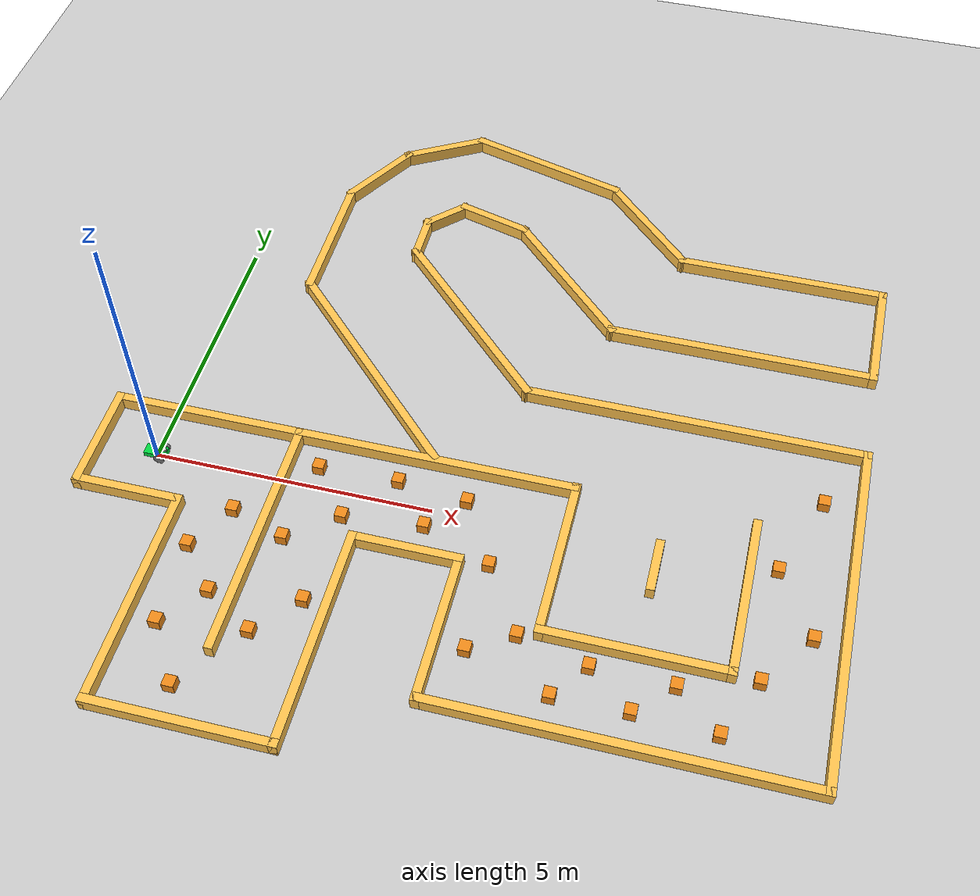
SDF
<?xml version="1.0" ?>
<sdf version="1.5">
  <world name="default">
    <!-- A global light source -->
    <include>
      <uri>model://sun</uri>
    </include>
    <!-- A ground plane -->
    <include>
      <uri>model://ground_plane</uri>
    </include>
    <!-- A ground plane -->
    <include>
      <uri>model://maze</uri>
    </include>
    <include>
      <uri>model://simple_diff</uri>
    </include>
    <model name='unit_box_clone'>
      <pose frame=''>1.72976 -0.812197 0.100735 4e-06 -3e-06 0</pose>
      <link name='link'>
        <inertial>
          <mass>1</mass>
          <inertia>
            <ixx>0.166667</ixx>
            <ixy>0</ixy>
            <ixz>0</ixz>
            <iyy>0.166667</iyy>
            <iyz>0</iyz>
            <izz>0.166667</izz>
          </inertia>
        </inertial>
        <collision name='collision'>
          <geometry>
            <box>
              <size>0.201469 0.201469 0.201469</size>
            </box>
          </geometry>
          <max_contacts>10</max_contacts>
          <surface>
            <contact>
              <ode/>
            </contact>
            <bounce/>
            <friction>
              <torsional>
                <ode/>
              </torsional>
              <ode/>
            </friction>
          </surface>
        </collision>
        <visual name='visual'>
          <geometry>
            <box>
              <size>0.201469 0.201469 0.201469</size>
            </box>
          </geometry>
          <material>
            <script>
              <name>Gazebo/Orange</name>
              <uri>file://media/materials/scripts/gazebo.material</uri>
            </script>
          </material>
        </visual>
        <self_collide>0</self_collide>
        <enable_wind>0</enable_wind>
        <kinematic>0</kinematic>
      </link>
    </model>
    <model name='unit_box_clone_0'>
      <pose frame=''>1.24328 -1.66091 0.100735 4e-06 -3e-06 0</pose>
      <link name='link'>
        <inertial>
          <mass>1</mass>
          <inertia>
            <ixx>0.166667</ixx>
            <ixy>0</ixy>
            <ixz>0</ixz>
            <iyy>0.166667</iyy>
            <iyz>0</iyz>
            <izz>0.166667</izz>
          </inertia>
        </inertial>
        <collision name='collision'>
          <geometry>
            <box>
              <size>0.201469 0.201469 0.201469</size>
            </box>
          </geometry>
          <max_contacts>10</max_contacts>
          <surface>
            <contact>
              <ode/>
            </contact>
            <bounce/>
            <friction>
              <torsional>
                <ode/>
              </torsional>
              <ode/>
            </friction>
          </surface>
        </collision>
        <visual name='visual'>
          <geometry>
            <box>
              <size>0.201469 0.201469 0.201469</size>
            </box>
          </geometry>
          <material>
            <script>
              <name>Gazebo/Orange</name>
              <uri>file://media/materials/scripts/gazebo.material</uri>
            </script>
          </material>
        </visual>
        <self_collide>0</self_collide>
        <enable_wind>0</enable_wind>
        <kinematic>0</kinematic>
      </link>
    </model>
    <model name='unit_box_clone_1'>
      <pose frame=''>1.90588 -2.41851 0.100735 4e-06 -3e-06 0</pose>
      <link name='link'>
        <inertial>
          <mass>1</mass>
          <inertia>
            <ixx>0.166667</ixx>
            <ixy>0</ixy>
            <ixz>0</ixz>
            <iyy>0.166667</iyy>
            <iyz>0</iyz>
            <izz>0.166667</izz>
          </inertia>
        </inertial>
        <collision name='collision'>
          <geometry>
            <box>
              <size>0.201469 0.201469 0.201469</size>
            </box>
          </geometry>
          <max_contacts>10</max_contacts>
          <surface>
            <contact>
              <ode/>
            </contact>
            <bounce/>
            <friction>
              <torsional>
                <ode/>
              </torsional>
              <ode/>
            </friction>
          </surface>
        </collision>
        <visual name='visual'>
          <geometry>
            <box>
              <size>0.201469 0.201469 0.201469</size>
            </box>
          </geometry>
          <material>
            <script>
              <name>Gazebo/Orange</name>
              <uri>file://media/materials/scripts/gazebo.material</uri>
            </script>
          </material>
        </visual>
        <self_collide>0</self_collide>
        <enable_wind>0</enable_wind>
        <kinematic>0</kinematic>
      </link>
    </model>
    <model name='unit_box_clone_2'>
      <pose frame=''>1.30367 -3.1595 0.100734 4e-06 -3e-06 0</pose>
      <link name='link'>
        <inertial>
          <mass>1</mass>
          <inertia>
            <ixx>0.166667</ixx>
            <ixy>0</ixy>
            <ixz>0</ixz>
            <iyy>0.166667</iyy>
            <iyz>0</iyz>
            <izz>0.166667</izz>
          </inertia>
        </inertial>
        <collision name='collision'>
          <geometry>
            <box>
              <size>0.201469 0.201469 0.201469</size>
            </box>
          </geometry>
          <max_contacts>10</max_contacts>
          <surface>
            <contact>
              <ode/>
            </contact>
            <bounce/>
            <friction>
              <torsional>
                <ode/>
              </torsional>
              <ode/>
            </friction>
          </surface>
        </collision>
        <visual name='visual'>
          <geometry>
            <box>
              <size>0.201469 0.201469 0.201469</size>
            </box>
          </geometry>
          <material>
            <script>
              <name>Gazebo/Orange</name>
              <uri>file://media/materials/scripts/gazebo.material</uri>
            </script>
          </material>
        </visual>
        <self_collide>0</self_collide>
        <enable_wind>0</enable_wind>
        <kinematic>0</kinematic>
      </link>
    </model>
    <model name='unit_box_clone_3'>
      <pose frame=''>1.95368 -4.16063 0.100734 4e-06 -3e-06 0</pose>
      <link name='link'>
        <inertial>
          <mass>1</mass>
          <inertia>
            <ixx>0.166667</ixx>
            <ixy>0</ixy>
            <ixz>0</ixz>
            <iyy>0.166667</iyy>
            <iyz>0</iyz>
            <izz>0.166667</izz>
          </inertia>
        </inertial>
        <collision name='collision'>
          <geometry>
            <box>
              <size>0.201469 0.201469 0.201469</size>
            </box>
          </geometry>
          <max_contacts>10</max_contacts>
          <surface>
            <contact>
              <ode/>
            </contact>
            <bounce/>
            <friction>
              <torsional>
                <ode/>
              </torsional>
              <ode/>
            </friction>
          </surface>
        </collision>
        <visual name='visual'>
          <geometry>
            <box>
              <size>0.201469 0.201469 0.201469</size>
            </box>
          </geometry>
          <material>
            <script>
              <name>Gazebo/Orange</name>
              <uri>file://media/materials/scripts/gazebo.material</uri>
            </script>
          </material>
        </visual>
        <self_collide>0</self_collide>
        <enable_wind>0</enable_wind>
        <kinematic>0</kinematic>
      </link>
    </model>
    <model name='unit_box_clone_4'>
      <pose frame=''>2.8029 -2.96481 0.100734 4e-06 -3e-06 0</pose>
      <link name='link'>
        <inertial>
          <mass>1</mass>
          <inertia>
            <ixx>0.166667</ixx>
            <ixy>0</ixy>
            <ixz>0</ixz>
            <iyy>0.166667</iyy>
            <iyz>0</iyz>
            <izz>0.166667</izz>
          </inertia>
        </inertial>
        <collision name='collision'>
          <geometry>
            <box>
              <size>0.201469 0.201469 0.201469</size>
            </box>
          </geometry>
          <max_contacts>10</max_contacts>
          <surface>
            <contact>
              <ode/>
            </contact>
            <bounce/>
            <friction>
              <torsional>
                <ode/>
              </torsional>
              <ode/>
            </friction>
          </surface>
        </collision>
        <visual name='visual'>
          <geometry>
            <box>
              <size>0.201469 0.201469 0.201469</size>
            </box>
          </geometry>
          <material>
            <script>
              <name>Gazebo/Orange</name>
              <uri>file://media/materials/scripts/gazebo.material</uri>
            </script>
          </material>
        </visual>
        <self_collide>0</self_collide>
        <enable_wind>0</enable_wind>
        <kinematic>0</kinematic>
      </link>
    </model>
    <model name='unit_box_clone_5'>
      <pose frame=''>3.46356 -2.2145 0.100734 4e-06 -3e-06 0</pose>
      <link name='link'>
        <inertial>
          <mass>1</mass>
          <inertia>
            <ixx>0.166667</ixx>
            <ixy>0</ixy>
            <ixz>0</ixz>
            <iyy>0.166667</iyy>
            <iyz>0</iyz>
            <izz>0.166667</izz>
          </inertia>
        </inertial>
        <collision name='collision'>
          <geometry>
            <box>
              <size>0.201469 0.201469 0.201469</size>
            </box>
          </geometry>
          <max_contacts>10</max_contacts>
          <surface>
            <contact>
              <ode/>
            </contact>
            <bounce/>
            <friction>
              <torsional>
                <ode/>
              </torsional>
              <ode/>
            </friction>
          </surface>
        </collision>
        <visual name='visual'>
          <geometry>
            <box>
              <size>0.201469 0.201469 0.201469</size>
            </box>
          </geometry>
          <material>
            <script>
              <name>Gazebo/Orange</name>
              <uri>file://media/materials/scripts/gazebo.material</uri>
            </script>
          </material>
        </visual>
        <self_collide>0</self_collide>
        <enable_wind>0</enable_wind>
        <kinematic>0</kinematic>
      </link>
    </model>
    <model name='unit_box_clone_6'>
      <pose frame=''>2.72766 -1.14347 0.100734 4e-06 -3e-06 0</pose>
      <link name='link'>
        <inertial>
          <mass>1</mass>
          <inertia>
            <ixx>0.166667</ixx>
            <ixy>0</ixy>
            <ixz>0</ixz>
            <iyy>0.166667</iyy>
            <iyz>0</iyz>
            <izz>0.166667</izz>
          </inertia>
        </inertial>
        <collision name='collision'>
          <geometry>
            <box>
              <size>0.201469 0.201469 0.201469</size>
            </box>
          </geometry>
          <max_contacts>10</max_contacts>
          <surface>
            <contact>
              <ode/>
            </contact>
            <bounce/>
            <friction>
              <torsional>
                <ode/>
              </torsional>
              <ode/>
            </friction>
          </surface>
        </collision>
        <visual name='visual'>
          <geometry>
            <box>
              <size>0.201469 0.201469 0.201469</size>
            </box>
          </geometry>
          <material>
            <script>
              <name>Gazebo/Orange</name>
              <uri>file://media/materials/scripts/gazebo.material</uri>
            </script>
          </material>
        </visual>
        <self_collide>0</self_collide>
        <enable_wind>0</enable_wind>
        <kinematic>0</kinematic>
      </link>
    </model>
    <model name='unit_box_clone_7'>
      <pose frame=''>3.55881 -0.496748 0.100734 4e-06 -3e-06 0</pose>
      <link name='link'>
        <inertial>
          <mass>1</mass>
          <inertia>
            <ixx>0.166667</ixx>
            <ixy>0</ixy>
            <ixz>0</ixz>
            <iyy>0.166667</iyy>
            <iyz>0</iyz>
            <izz>0.166667</izz>
          </inertia>
        </inertial>
        <collision name='collision'>
          <geometry>
            <box>
              <size>0.201469 0.201469 0.201469</size>
            </box>
          </geometry>
          <max_contacts>10</max_contacts>
          <surface>
            <contact>
              <ode/>
            </contact>
            <bounce/>
            <friction>
              <torsional>
                <ode/>
              </torsional>
              <ode/>
            </friction>
          </surface>
        </collision>
        <visual name='visual'>
          <geometry>
            <box>
              <size>0.201469 0.201469 0.201469</size>
            </box>
          </geometry>
          <material>
            <script>
              <name>Gazebo/Orange</name>
              <uri>file://media/materials/scripts/gazebo.material</uri>
            </script>
          </material>
        </visual>
        <self_collide>0</self_collide>
        <enable_wind>0</enable_wind>
        <kinematic>0</kinematic>
      </link>
    </model>
    <model name='unit_box_clone_8'>
      <pose frame=''>2.8727 0.379101 0.100734 4e-06 -3e-06 0</pose>
      <link name='link'>
        <inertial>
          <mass>1</mass>
          <inertia>
            <ixx>0.166667</ixx>
            <ixy>0</ixy>
            <ixz>0</ixz>
            <iyy>0.166667</iyy>
            <iyz>0</iyz>
            <izz>0.166667</izz>
          </inertia>
        </inertial>
        <collision name='collision'>
          <geometry>
            <box>
              <size>0.201469 0.201469 0.201469</size>
            </box>
          </geometry>
          <max_contacts>10</max_contacts>
          <surface>
            <contact>
              <ode/>
            </contact>
            <bounce/>
            <friction>
              <torsional>
                <ode/>
              </torsional>
              <ode/>
            </friction>
          </surface>
        </collision>
        <visual name='visual'>
          <geometry>
            <box>
              <size>0.201469 0.201469 0.201469</size>
            </box>
          </geometry>
          <material>
            <script>
              <name>Gazebo/Orange</name>
              <uri>file://media/materials/scripts/gazebo.material</uri>
            </script>
          </material>
        </visual>
        <self_collide>0</self_collide>
        <enable_wind>0</enable_wind>
        <kinematic>0</kinematic>
      </link>
    </model>
    <model name='unit_box_clone_9'>
      <pose frame=''>4.2939 0.422765 0.100734 4e-06 -3e-06 0</pose>
      <link name='link'>
        <inertial>
          <mass>1</mass>
          <inertia>
            <ixx>0.166667</ixx>
            <ixy>0</ixy>
            <ixz>0</ixz>
            <iyy>0.166667</iyy>
            <iyz>0</iyz>
            <izz>0.166667</izz>
          </inertia>
        </inertial>
        <collision name='collision'>
          <geometry>
            <box>
              <size>0.201469 0.201469 0.201469</size>
            </box>
          </geometry>
          <max_contacts>10</max_contacts>
          <surface>
            <contact>
              <ode/>
            </contact>
            <bounce/>
            <friction>
              <torsional>
                <ode/>
              </torsional>
              <ode/>
            </friction>
          </surface>
        </collision>
        <visual name='visual'>
          <geometry>
            <box>
              <size>0.201469 0.201469 0.201469</size>
            </box>
          </geometry>
          <material>
            <script>
              <name>Gazebo/Orange</name>
              <uri>file://media/materials/scripts/gazebo.material</uri>
            </script>
          </material>
        </visual>
        <self_collide>0</self_collide>
        <enable_wind>0</enable_wind>
        <kinematic>0</kinematic>
      </link>
    </model>
    <model name='unit_box_clone_10'>
      <pose frame=''>4.9692 -0.356687 0.100734 4e-06 -3e-06 0</pose>
      <link name='link'>
        <inertial>
          <mass>1</mass>
          <inertia>
            <ixx>0.166667</ixx>
            <ixy>0</ixy>
            <ixz>0</ixz>
            <iyy>0.166667</iyy>
            <iyz>0</iyz>
            <izz>0.166667</izz>
          </inertia>
        </inertial>
        <collision name='collision'>
          <geometry>
            <box>
              <size>0.201469 0.201469 0.201469</size>
            </box>
          </geometry>
          <max_contacts>10</max_contacts>
          <surface>
            <contact>
              <ode/>
            </contact>
            <bounce/>
            <friction>
              <torsional>
                <ode/>
              </torsional>
              <ode/>
            </friction>
          </surface>
        </collision>
        <visual name='visual'>
          <geometry>
            <box>
              <size>0.201469 0.201469 0.201469</size>
            </box>
          </geometry>
          <material>
            <script>
              <name>Gazebo/Orange</name>
              <uri>file://media/materials/scripts/gazebo.material</uri>
            </script>
          </material>
        </visual>
        <self_collide>0</self_collide>
        <enable_wind>0</enable_wind>
        <kinematic>0</kinematic>
      </link>
    </model>
    <model name='unit_box_clone_11'>
      <pose frame=''>5.54943 0.300041 0.100734 4e-06 -3e-06 0</pose>
      <link name='link'>
        <inertial>
          <mass>1</mass>
          <inertia>
            <ixx>0.166667</ixx>
            <ixy>0</ixy>
            <ixz>0</ixz>
            <iyy>0.166667</iyy>
            <iyz>0</iyz>
            <izz>0.166667</izz>
          </inertia>
        </inertial>
        <collision name='collision'>
          <geometry>
            <box>
              <size>0.201469 0.201469 0.201469</size>
            </box>
          </geometry>
          <max_contacts>10</max_contacts>
          <surface>
            <contact>
              <ode/>
            </contact>
            <bounce/>
            <friction>
              <torsional>
                <ode/>
              </torsional>
              <ode/>
            </friction>
          </surface>
        </collision>
        <visual name='visual'>
          <geometry>
            <box>
              <size>0.201469 0.201469 0.201469</size>
            </box>
          </geometry>
          <material>
            <script>
              <name>Gazebo/Orange</name>
              <uri>file://media/materials/scripts/gazebo.material</uri>
            </script>
          </material>
        </visual>
        <self_collide>0</self_collide>
        <enable_wind>0</enable_wind>
        <kinematic>0</kinematic>
      </link>
    </model>
    <model name='unit_box_clone_12'>
      <pose frame=''>6.22487 -0.841816 0.100734 4e-06 -3e-06 0</pose>
      <link name='link'>
        <inertial>
          <mass>1</mass>
          <inertia>
            <ixx>0.166667</ixx>
            <ixy>0</ixy>
            <ixz>0</ixz>
            <iyy>0.166667</iyy>
            <iyz>0</iyz>
            <izz>0.166667</izz>
          </inertia>
        </inertial>
        <collision name='collision'>
          <geometry>
            <box>
              <size>0.201469 0.201469 0.201469</size>
            </box>
          </geometry>
          <max_contacts>10</max_contacts>
          <surface>
            <contact>
              <ode/>
            </contact>
            <bounce/>
            <friction>
              <torsional>
                <ode/>
              </torsional>
              <ode/>
            </friction>
          </surface>
        </collision>
        <visual name='visual'>
          <geometry>
            <box>
              <size>0.201469 0.201469 0.201469</size>
            </box>
          </geometry>
          <material>
            <script>
              <name>Gazebo/Orange</name>
              <uri>file://media/materials/scripts/gazebo.material</uri>
            </script>
          </material>
        </visual>
        <self_collide>0</self_collide>
        <enable_wind>0</enable_wind>
        <kinematic>0</kinematic>
      </link>
    </model>
    <model name='unit_box_clone_13'>
      <pose frame=''>6.97691 -2.01097 0.100734 4e-06 -3e-06 0</pose>
      <link name='link'>
        <inertial>
          <mass>1</mass>
          <inertia>
            <ixx>0.166667</ixx>
            <ixy>0</ixy>
            <ixz>0</ixz>
            <iyy>0.166667</iyy>
            <iyz>0</iyz>
            <izz>0.166667</izz>
          </inertia>
        </inertial>
        <collision name='collision'>
          <geometry>
            <box>
              <size>0.201469 0.201469 0.201469</size>
            </box>
          </geometry>
          <max_contacts>10</max_contacts>
          <surface>
            <contact>
              <ode/>
            </contact>
            <bounce/>
            <friction>
              <torsional>
                <ode/>
              </torsional>
              <ode/>
            </friction>
          </surface>
        </collision>
        <visual name='visual'>
          <geometry>
            <box>
              <size>0.201469 0.201469 0.201469</size>
            </box>
          </geometry>
          <material>
            <script>
              <name>Gazebo/Orange</name>
              <uri>file://media/materials/scripts/gazebo.material</uri>
            </script>
          </material>
        </visual>
        <self_collide>0</self_collide>
        <enable_wind>0</enable_wind>
        <kinematic>0</kinematic>
      </link>
    </model>
    <model name='unit_box_clone_14'>
      <pose frame=''>6.24107 -2.4559 0.100734 4e-06 -3e-06 0</pose>
      <link name='link'>
        <inertial>
          <mass>1</mass>
          <inertia>
            <ixx>0.166667</ixx>
            <ixy>0</ixy>
            <ixz>0</ixz>
            <iyy>0.166667</iyy>
            <iyz>0</iyz>
            <izz>0.166667</izz>
          </inertia>
        </inertial>
        <collision name='collision'>
          <geometry>
            <box>
              <size>0.201469 0.201469 0.201469</size>
            </box>
          </geometry>
          <max_contacts>10</max_contacts>
          <surface>
            <contact>
              <ode/>
            </contact>
            <bounce/>
            <friction>
              <torsional>
                <ode/>
              </torsional>
              <ode/>
            </friction>
          </surface>
        </collision>
        <visual name='visual'>
          <geometry>
            <box>
              <size>0.201469 0.201469 0.201469</size>
            </box>
          </geometry>
          <material>
            <script>
              <name>Gazebo/Orange</name>
              <uri>file://media/materials/scripts/gazebo.material</uri>
            </script>
          </material>
        </visual>
        <self_collide>0</self_collide>
        <enable_wind>0</enable_wind>
        <kinematic>0</kinematic>
      </link>
    </model>
    <model name='unit_box_clone_15'>
      <pose frame=''>7.71583 -2.9299 0.100734 4e-06 -3e-06 0</pose>
      <link name='link'>
        <inertial>
          <mass>1</mass>
          <inertia>
            <ixx>0.166667</ixx>
            <ixy>0</ixy>
            <ixz>0</ixz>
            <iyy>0.166667</iyy>
            <iyz>0</iyz>
            <izz>0.166667</izz>
          </inertia>
        </inertial>
        <collision name='collision'>
          <geometry>
            <box>
              <size>0.201469 0.201469 0.201469</size>
            </box>
          </geometry>
          <max_contacts>10</max_contacts>
          <surface>
            <contact>
              <ode/>
            </contact>
            <bounce/>
            <friction>
              <torsional>
                <ode/>
              </torsional>
              <ode/>
            </friction>
          </surface>
        </collision>
        <visual name='visual'>
          <geometry>
            <box>
              <size>0.201469 0.201469 0.201469</size>
            </box>
          </geometry>
          <material>
            <script>
              <name>Gazebo/Orange</name>
              <uri>file://media/materials/scripts/gazebo.material</uri>
            </script>
          </material>
        </visual>
        <self_collide>0</self_collide>
        <enable_wind>0</enable_wind>
        <kinematic>0</kinematic>
      </link>
    </model>
    <model name='unit_box_clone_16'>
      <pose frame=''>8.20631 -2.28708 0.100734 4e-06 -3e-06 0</pose>
      <link name='link'>
        <inertial>
          <mass>1</mass>
          <inertia>
            <ixx>0.166667</ixx>
            <ixy>0</ixy>
            <ixz>0</ixz>
            <iyy>0.166667</iyy>
            <iyz>0</iyz>
            <izz>0.166667</izz>
          </inertia>
        </inertial>
        <collision name='collision'>
          <geometry>
            <box>
              <size>0.201469 0.201469 0.201469</size>
            </box>
          </geometry>
          <max_contacts>10</max_contacts>
          <surface>
            <contact>
              <ode/>
            </contact>
            <bounce/>
            <friction>
              <torsional>
                <ode/>
              </torsional>
              <ode/>
            </friction>
          </surface>
        </collision>
        <visual name='visual'>
          <geometry>
            <box>
              <size>0.201469 0.201469 0.201469</size>
            </box>
          </geometry>
          <material>
            <script>
              <name>Gazebo/Orange</name>
              <uri>file://media/materials/scripts/gazebo.material</uri>
            </script>
          </material>
        </visual>
        <self_collide>0</self_collide>
        <enable_wind>0</enable_wind>
        <kinematic>0</kinematic>
      </link>
    </model>
    <model name='unit_box_clone_17'>
      <pose frame=''>8.98857 -2.90039 0.100734 4e-06 -3e-06 0</pose>
      <link name='link'>
        <inertial>
          <mass>1</mass>
          <inertia>
            <ixx>0.166667</ixx>
            <ixy>0</ixy>
            <ixz>0</ixz>
            <iyy>0.166667</iyy>
            <iyz>0</iyz>
            <izz>0.166667</izz>
          </inertia>
        </inertial>
        <collision name='collision'>
          <geometry>
            <box>
              <size>0.201469 0.201469 0.201469</size>
            </box>
          </geometry>
          <max_contacts>10</max_contacts>
          <surface>
            <contact>
              <ode/>
            </contact>
            <bounce/>
            <friction>
              <torsional>
                <ode/>
              </torsional>
              <ode/>
            </friction>
          </surface>
        </collision>
        <visual name='visual'>
          <geometry>
            <box>
              <size>0.201469 0.201469 0.201469</size>
            </box>
          </geometry>
          <material>
            <script>
              <name>Gazebo/Orange</name>
              <uri>file://media/materials/scripts/gazebo.material</uri>
            </script>
          </material>
        </visual>
        <self_collide>0</self_collide>
        <enable_wind>0</enable_wind>
        <kinematic>0</kinematic>
      </link>
    </model>
    <model name='unit_box_clone_18'>
      <pose frame=''>9.60124 -2.29588 0.100734 4e-06 -3e-06 0</pose>
      <link name='link'>
        <inertial>
          <mass>1</mass>
          <inertia>
            <ixx>0.166667</ixx>
            <ixy>0</ixy>
            <ixz>0</ixz>
            <iyy>0.166667</iyy>
            <iyz>0</iyz>
            <izz>0.166667</izz>
          </inertia>
        </inertial>
        <collision name='collision'>
          <geometry>
            <box>
              <size>0.201469 0.201469 0.201469</size>
            </box>
          </geometry>
          <max_contacts>10</max_contacts>
          <surface>
            <contact>
              <ode/>
            </contact>
            <bounce/>
            <friction>
              <torsional>
                <ode/>
              </torsional>
              <ode/>
            </friction>
          </surface>
        </collision>
        <visual name='visual'>
          <geometry>
            <box>
              <size>0.201469 0.201469 0.201469</size>
            </box>
          </geometry>
          <material>
            <script>
              <name>Gazebo/Orange</name>
              <uri>file://media/materials/scripts/gazebo.material</uri>
            </script>
          </material>
        </visual>
        <self_collide>0</self_collide>
        <enable_wind>0</enable_wind>
        <kinematic>0</kinematic>
      </link>
    </model>
    <model name='unit_box_clone_19'>
      <pose frame=''>10.3805 -2.94608 0.100734 4e-06 -3e-06 0</pose>
      <link name='link'>
        <inertial>
          <mass>1</mass>
          <inertia>
            <ixx>0.166667</ixx>
            <ixy>0</ixy>
            <ixz>0</ixz>
            <iyy>0.166667</iyy>
            <iyz>0</iyz>
            <izz>0.166667</izz>
          </inertia>
        </inertial>
        <collision name='collision'>
          <geometry>
            <box>
              <size>0.201469 0.201469 0.201469</size>
            </box>
          </geometry>
          <max_contacts>10</max_contacts>
          <surface>
            <contact>
              <ode/>
            </contact>
            <bounce/>
            <friction>
              <torsional>
                <ode/>
              </torsional>
              <ode/>
            </friction>
          </surface>
        </collision>
        <visual name='visual'>
          <geometry>
            <box>
              <size>0.201469 0.201469 0.201469</size>
            </box>
          </geometry>
          <material>
            <script>
              <name>Gazebo/Orange</name>
              <uri>file://media/materials/scripts/gazebo.material</uri>
            </script>
          </material>
        </visual>
        <self_collide>0</self_collide>
        <enable_wind>0</enable_wind>
        <kinematic>0</kinematic>
      </link>
    </model>
    <model name='unit_box_clone_20'>
      <pose frame=''>10.8575 -1.90122 0.100734 4e-06 -3e-06 0</pose>
      <link name='link'>
        <inertial>
          <mass>1</mass>
          <inertia>
            <ixx>0.166667</ixx>
            <ixy>0</ixy>
            <ixz>0</ixz>
            <iyy>0.166667</iyy>
            <iyz>0</iyz>
            <izz>0.166667</izz>
          </inertia>
        </inertial>
        <collision name='collision'>
          <geometry>
            <box>
              <size>0.201469 0.201469 0.201469</size>
            </box>
          </geometry>
          <max_contacts>10</max_contacts>
          <surface>
            <contact>
              <ode/>
            </contact>
            <bounce/>
            <friction>
              <torsional>
                <ode/>
              </torsional>
              <ode/>
            </friction>
          </surface>
        </collision>
        <visual name='visual'>
          <geometry>
            <box>
              <size>0.201469 0.201469 0.201469</size>
            </box>
          </geometry>
          <material>
            <script>
              <name>Gazebo/Orange</name>
              <uri>file://media/materials/scripts/gazebo.material</uri>
            </script>
          </material>
        </visual>
        <self_collide>0</self_collide>
        <enable_wind>0</enable_wind>
        <kinematic>0</kinematic>
      </link>
    </model>
    <model name='unit_box_clone_21'>
      <pose frame=''>11.5803 -0.944816 0.100734 4e-06 -3e-06 0</pose>
      <link name='link'>
        <inertial>
          <mass>1</mass>
          <inertia>
            <ixx>0.166667</ixx>
            <ixy>0</ixy>
            <ixz>0</ixz>
            <iyy>0.166667</iyy>
            <iyz>0</iyz>
            <izz>0.166667</izz>
          </inertia>
        </inertial>
        <collision name='collision'>
          <geometry>
            <box>
              <size>0.201469 0.201469 0.201469</size>
            </box>
          </geometry>
          <max_contacts>10</max_contacts>
          <surface>
            <contact>
              <ode/>
            </contact>
            <bounce/>
            <friction>
              <torsional>
                <ode/>
              </torsional>
              <ode/>
            </friction>
          </surface>
        </collision>
        <visual name='visual'>
          <geometry>
            <box>
              <size>0.201469 0.201469 0.201469</size>
            </box>
          </geometry>
          <material>
            <script>
              <name>Gazebo/Orange</name>
              <uri>file://media/materials/scripts/gazebo.material</uri>
            </script>
          </material>
        </visual>
        <self_collide>0</self_collide>
        <enable_wind>0</enable_wind>
        <kinematic>0</kinematic>
      </link>
    </model>
    <model name='unit_box_clone_22'>
      <pose frame=''>10.8775 0.204691 0.100735 4e-06 -3e-06 0</pose>
      <link name='link'>
        <inertial>
          <mass>1</mass>
          <inertia>
            <ixx>0.166667</ixx>
            <ixy>0</ixy>
            <ixz>0</ixz>
            <iyy>0.166667</iyy>
            <iyz>0</iyz>
            <izz>0.166667</izz>
          </inertia>
        </inertial>
        <collision name='collision'>
          <geometry>
            <box>
              <size>0.201469 0.201469 0.201469</size>
            </box>
          </geometry>
          <max_contacts>10</max_contacts>
          <surface>
            <contact>
              <ode/>
            </contact>
            <bounce/>
            <friction>
              <torsional>
                <ode/>
              </torsional>
              <ode/>
            </friction>
          </surface>
        </collision>
        <visual name='visual'>
          <geometry>
            <box>
              <size>0.201469 0.201469 0.201469</size>
            </box>
          </geometry>
          <material>
            <script>
              <name>Gazebo/Orange</name>
              <uri>file://media/materials/scripts/gazebo.material</uri>
            </script>
          </material>
        </visual>
        <self_collide>0</self_collide>
        <enable_wind>0</enable_wind>
        <kinematic>0</kinematic>
      </link>
    </model>
    <model name='unit_box_clone_23'>
      <pose frame=''>11.464 1.72022 0.100735 4e-06 -3e-06 0</pose>
      <link name='link'>
        <inertial>
          <mass>1</mass>
          <inertia>
            <ixx>0.166667</ixx>
            <ixy>0</ixy>
            <ixz>0</ixz>
            <iyy>0.166667</iyy>
            <iyz>0</iyz>
            <izz>0.166667</izz>
          </inertia>
        </inertial>
        <collision name='collision'>
          <geometry>
            <box>
              <size>0.201469 0.201469 0.201469</size>
            </box>
          </geometry>
          <max_contacts>10</max_contacts>
          <surface>
            <contact>
              <ode/>
            </contact>
            <bounce/>
            <friction>
              <torsional>
                <ode/>
              </torsional>
              <ode/>
            </friction>
          </surface>
        </collision>
        <visual name='visual'>
          <geometry>
            <box>
              <size>0.201469 0.201469 0.201469</size>
            </box>
          </geometry>
          <material>
            <script>
              <name>Gazebo/Orange</name>
              <uri>file://media/materials/scripts/gazebo.material</uri>
            </script>
          </material>
        </visual>
        <self_collide>0</self_collide>
        <enable_wind>0</enable_wind>
        <kinematic>0</kinematic>
      </link>
    </model>
  </world>
</sdf>

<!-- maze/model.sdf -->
<sdf version='1.6'>
  <model name='maze'>
    <pose frame=''>5.512 2.22318 0 0 -0 0</pose>
    <link name='Wall_0'>
      <collision name='Wall_0_Collision'>
        <geometry>
          <box>
            <size>2 0.15 0.25</size>
          </box>
        </geometry>
        <pose frame=''>0 0 0.125 0 -0 0</pose>
      </collision>
      <visual name='Wall_0_Visual'>
        <pose frame=''>0 0 0.125 0 -0 0</pose>
        <geometry>
          <box>
            <size>2 0.15 0.25</size>
          </box>
        </geometry>
        <material>
          <script>
            <uri>file://media/materials/scripts/gazebo.material</uri>
            <name>Gazebo/Grey</name>
          </script>
          <ambient>1 0.764706 0.305882 1</ambient>
        </material>
        <meta>
          <layer>0</layer>
        </meta>
      </visual>
      <pose frame=''>-6.575 -2.22519 0 0 -0 1.5708</pose>
    </link>
    <link name='Wall_10'>
      <collision name='Wall_10_Collision'>
        <geometry>
          <box>
            <size>4 0.15 0.25</size>
          </box>
        </geometry>
        <pose frame=''>0 0 0.125 0 -0 0</pose>
      </collision>
      <visual name='Wall_10_Visual'>
        <pose frame=''>0 0 0.125 0 -0 0</pose>
        <geometry>
          <box>
            <size>4 0.15 0.25</size>
          </box>
        </geometry>
        <material>
          <script>
            <uri>file://media/materials/scripts/gazebo.material</uri>
            <name>Gazebo/Grey</name>
          </script>
          <ambient>1 0.764706 0.305882 1</ambient>
        </material>
        <meta>
          <layer>0</layer>
        </meta>
      </visual>
      <pose frame=''>-1.625 -5.07519 0 0 -0 1.5708</pose>
    </link>
    <link name='Wall_11'>
      <collision name='Wall_11_Collision'>
        <geometry>
          <box>
            <size>2 0.15 0.25</size>
          </box>
        </geometry>
        <pose frame=''>0 0 0.125 0 -0 0</pose>
      </collision>
      <visual name='Wall_11_Visual'>
        <pose frame=''>0 0 0.125 0 -0 0</pose>
        <geometry>
          <box>
            <size>2 0.15 0.25</size>
          </box>
        </geometry>
        <material>
          <script>
            <uri>file://media/materials/scripts/gazebo.material</uri>
            <name>Gazebo/Grey</name>
          </script>
          <ambient>1 0.764706 0.305882 1</ambient>
        </material>
        <meta>
          <layer>0</layer>
        </meta>
      </visual>
      <pose frame=''>-0.7 -3.15019 0 0 -0 0</pose>
    </link>
    <link name='Wall_12'>
      <collision name='Wall_12_Collision'>
        <geometry>
          <box>
            <size>2.75 0.15 0.25</size>
          </box>
        </geometry>
        <pose frame=''>0 0 0.125 0 -0 0</pose>
      </collision>
      <visual name='Wall_12_Visual'>
        <pose frame=''>0 0 0.125 0 -0 0</pose>
        <geometry>
          <box>
            <size>2.75 0.15 0.25</size>
          </box>
        </geometry>
        <material>
          <script>
            <uri>file://media/materials/scripts/gazebo.material</uri>
            <name>Gazebo/Grey</name>
          </script>
          <ambient>1 0.764706 0.305882 1</ambient>
        </material>
        <meta>
          <layer>0</layer>
        </meta>
      </visual>
      <pose frame=''>0.225 -4.45019 0 0 -0 -1.5708</pose>
    </link>
    <link name='Wall_13'>
      <collision name='Wall_13_Collision'>
        <geometry>
          <box>
            <size>6.5 0.15 0.25</size>
          </box>
        </geometry>
        <pose frame=''>0 0 0.125 0 -0 0</pose>
      </collision>
      <visual name='Wall_13_Visual'>
        <pose frame=''>0 0 0.125 0 -0 0</pose>
        <geometry>
          <box>
            <size>6.5 0.15 0.25</size>
          </box>
        </geometry>
        <material>
          <script>
            <uri>file://media/materials/scripts/gazebo.material</uri>
            <name>Gazebo/Grey</name>
          </script>
          <ambient>1 0.764706 0.305882 1</ambient>
        </material>
        <meta>
          <layer>0</layer>
        </meta>
      </visual>
      <pose frame=''>3.4 -5.75019 0 0 -0 0</pose>
    </link>
    <link name='Wall_15'>
      <collision name='Wall_15_Collision'>
        <geometry>
          <box>
            <size>4.5 0.15 0.25</size>
          </box>
        </geometry>
        <pose frame=''>0 0 0.125 0 -0 0</pose>
      </collision>
      <visual name='Wall_15_Visual'>
        <pose frame=''>0 0 0.125 0 -0 0</pose>
        <geometry>
          <box>
            <size>4.5 0.15 0.25</size>
          </box>
        </geometry>
        <material>
          <script>
            <uri>file://media/materials/scripts/gazebo.material</uri>
            <name>Gazebo/Grey</name>
          </script>
          <ambient>1 0.764706 0.305882 1</ambient>
        </material>
        <meta>
          <layer>0</layer>
        </meta>
      </visual>
      <pose frame=''>-3.174 -3.48618 0 0 -0 -1.5708</pose>
    </link>
    <link name='Wall_17'>
      <collision name='Wall_17_Collision'>
        <geometry>
          <box>
            <size>3 0.15 0.25</size>
          </box>
        </geometry>
        <pose frame=''>0 0 0.125 0 -0 0</pose>
      </collision>
      <visual name='Wall_17_Visual'>
        <pose frame=''>0 0 0.125 0 -0 0</pose>
        <geometry>
          <box>
            <size>3 0.15 0.25</size>
          </box>
        </geometry>
        <material>
          <script>
            <uri>file://media/materials/scripts/gazebo.material</uri>
            <name>Gazebo/Grey</name>
          </script>
          <ambient>1 0.764706 0.305882 1</ambient>
        </material>
        <meta>
          <layer>0</layer>
        </meta>
      </visual>
      <pose frame=''>1.801 -2.71019 0 0 -0 -1.5708</pose>
    </link>
    <link name='Wall_18'>
      <collision name='Wall_18_Collision'>
        <geometry>
          <box>
            <size>3.25 0.15 0.25</size>
          </box>
        </geometry>
        <pose frame=''>0 0 0.125 0 -0 0</pose>
      </collision>
      <visual name='Wall_18_Visual'>
        <pose frame=''>0 0 0.125 0 -0 0</pose>
        <geometry>
          <box>
            <size>3.25 0.15 0.25</size>
          </box>
        </geometry>
        <material>
          <script>
            <uri>file://media/materials/scripts/gazebo.material</uri>
            <name>Gazebo/Grey</name>
          </script>
          <ambient>1 0.764706 0.305882 1</ambient>
        </material>
        <meta>
          <layer>0</layer>
        </meta>
      </visual>
      <pose frame=''>3.351 -4.13518 0 0 -0 0</pose>
    </link>
    <link name='Wall_19'>
      <collision name='Wall_19_Collision'>
        <geometry>
          <box>
            <size>3 0.15 0.25</size>
          </box>
        </geometry>
        <pose frame=''>0 0 0.125 0 -0 0</pose>
      </collision>
      <visual name='Wall_19_Visual'>
        <pose frame=''>0 0 0.125 0 -0 0</pose>
        <geometry>
          <box>
            <size>3 0.15 0.25</size>
          </box>
        </geometry>
        <material>
          <script>
            <uri>file://media/materials/scripts/gazebo.material</uri>
            <name>Gazebo/Grey</name>
          </script>
          <ambient>1 0.764706 0.305882 1</ambient>
        </material>
        <meta>
          <layer>0</layer>
        </meta>
      </visual>
      <pose frame=''>4.901 -2.71019 0 0 -0 1.5708</pose>
    </link>
    <link name='Wall_21'>
      <collision name='Wall_21_Collision'>
        <geometry>
          <box>
            <size>6.5 0.15 0.25</size>
          </box>
        </geometry>
        <pose frame=''>0 0 0.125 0 -0 0</pose>
      </collision>
      <visual name='Wall_21_Visual'>
        <pose frame=''>0 0 0.125 0 -0 0</pose>
        <geometry>
          <box>
            <size>6.5 0.15 0.25</size>
          </box>
        </geometry>
        <material>
          <script>
            <uri>file://media/materials/scripts/gazebo.material</uri>
            <name>Gazebo/Grey</name>
          </script>
          <ambient>1 0.764706 0.305882 1</ambient>
        </material>
        <meta>
          <layer>0</layer>
        </meta>
      </visual>
      <pose frame=''>6.575 -2.57518 0 0 -0 1.5708</pose>
    </link>
    <link name='Wall_22'>
      <collision name='Wall_22_Collision'>
        <geometry>
          <box>
            <size>6.25 0.15 0.25</size>
          </box>
        </geometry>
        <pose frame=''>0 0 0.125 0 -0 0</pose>
      </collision>
      <visual name='Wall_22_Visual'>
        <pose frame=''>0 0 0.125 0 -0 0</pose>
        <geometry>
          <box>
            <size>6.25 0.15 0.25</size>
          </box>
        </geometry>
        <material>
          <script>
            <uri>file://media/materials/scripts/gazebo.material</uri>
            <name>Gazebo/Grey</name>
          </script>
          <ambient>1 0.764706 0.305882 1</ambient>
        </material>
        <meta>
          <layer>0</layer>
        </meta>
      </visual>
      <pose frame=''>3.525 0.599815 0 0 -0 3.14159</pose>
    </link>
    <link name='Wall_23'>
      <collision name='Wall_23_Collision'>
        <geometry>
          <box>
            <size>4.25 0.15 0.25</size>
          </box>
        </geometry>
        <pose frame=''>0 0 0.125 0 -0 0</pose>
      </collision>
      <visual name='Wall_23_Visual'>
        <pose frame=''>0 0 0.125 0 -0 0</pose>
        <geometry>
          <box>
            <size>4.25 0.15 0.25</size>
          </box>
        </geometry>
        <material>
          <script>
            <uri>file://media/materials/scripts/gazebo.material</uri>
            <name>Gazebo/Grey</name>
          </script>
          <ambient>1 0.764706 0.305882 1</ambient>
        </material>
        <meta>
          <layer>0</layer>
        </meta>
      </visual>
      <pose frame=''>-0.9745 2.04931 0 0 -0 2.35619</pose>
    </link>
    <link name='Wall_24'>
      <collision name='Wall_24_Collision'>
        <geometry>
          <box>
            <size>1 0.15 0.25</size>
          </box>
        </geometry>
        <pose frame=''>0 0 0.125 0 -0 0</pose>
      </collision>
      <visual name='Wall_24_Visual'>
        <pose frame=''>0 0 0.125 0 -0 0</pose>
        <geometry>
          <box>
            <size>1 0.15 0.25</size>
          </box>
        </geometry>
        <material>
          <script>
            <uri>file://media/materials/scripts/gazebo.material</uri>
            <name>Gazebo/Grey</name>
          </script>
          <ambient>1 0.764706 0.305882 1</ambient>
        </material>
        <meta>
          <layer>0</layer>
        </meta>
      </visual>
      <pose frame=''>-2.424 3.92381 0 0 -0 1.5708</pose>
    </link>
    <link name='Wall_25'>
      <collision name='Wall_25_Collision'>
        <geometry>
          <box>
            <size>1 0.15 0.25</size>
          </box>
        </geometry>
        <pose frame=''>0 0 0.125 0 -0 0</pose>
      </collision>
      <visual name='Wall_25_Visual'>
        <pose frame=''>0 0 0.125 0 -0 0</pose>
        <geometry>
          <box>
            <size>1 0.15 0.25</size>
          </box>
        </geometry>
        <material>
          <script>
            <uri>file://media/materials/scripts/gazebo.material</uri>
            <name>Gazebo/Grey</name>
          </script>
          <ambient>1 0.764706 0.305882 1</ambient>
        </material>
        <meta>
          <layer>0</layer>
        </meta>
      </visual>
      <pose frame=''>-2.1235 4.64931 0 0 -0 0.785398</pose>
    </link>
    <link name='Wall_26'>
      <collision name='Wall_26_Collision'>
        <geometry>
          <box>
            <size>1.5 0.15 0.25</size>
          </box>
        </geometry>
        <pose frame=''>0 0 0.125 0 -0 0</pose>
      </collision>
      <visual name='Wall_26_Visual'>
        <pose frame=''>0 0 0.125 0 -0 0</pose>
        <geometry>
          <box>
            <size>1.5 0.15 0.25</size>
          </box>
        </geometry>
        <material>
          <script>
            <uri>file://media/materials/scripts/gazebo.material</uri>
            <name>Gazebo/Grey</name>
          </script>
          <ambient>1 0.764706 0.305882 1</ambient>
        </material>
        <meta>
          <layer>0</layer>
        </meta>
      </visual>
      <pose frame=''>-1.171 4.77531 0 0 -0 -0.261509</pose>
    </link>
    <link name='Wall_27'>
      <collision name='Wall_27_Collision'>
        <geometry>
          <box>
            <size>3.25 0.15 0.25</size>
          </box>
        </geometry>
        <pose frame=''>0 0 0.125 0 -0 0</pose>
      </collision>
      <visual name='Wall_27_Visual'>
        <pose frame=''>0 0 0.125 0 -0 0</pose>
        <geometry>
          <box>
            <size>3.25 0.15 0.25</size>
          </box>
        </geometry>
        <material>
          <script>
            <uri>file://media/materials/scripts/gazebo.material</uri>
            <name>Gazebo/Grey</name>
          </script>
          <ambient>1 0.764706 0.305882 1</ambient>
        </material>
        <meta>
          <layer>0</layer>
        </meta>
      </visual>
      <pose frame=''>0.577 3.50481 0 0 -0 -0.785398</pose>
    </link>
    <link name='Wall_28'>
      <collision name='Wall_28_Collision'>
        <geometry>
          <box>
            <size>5 0.15 0.25</size>
          </box>
        </geometry>
        <pose frame=''>0 0 0.125 0 -0 0</pose>
      </collision>
      <visual name='Wall_28_Visual'>
        <pose frame=''>0 0 0.125 0 -0 0</pose>
        <geometry>
          <box>
            <size>5 0.15 0.25</size>
          </box>
        </geometry>
        <material>
          <script>
            <uri>file://media/materials/scripts/gazebo.material</uri>
            <name>Gazebo/Grey</name>
          </script>
          <ambient>1 0.764706 0.305882 1</ambient>
        </material>
        <meta>
          <layer>0</layer>
        </meta>
      </visual>
      <pose frame=''>4.098 2.40882 0 0 -0 0</pose>
    </link>
    <link name='Wall_29'>
      <collision name='Wall_29_Collision'>
        <geometry>
          <box>
            <size>2.25 0.15 0.25</size>
          </box>
        </geometry>
        <pose frame=''>0 0 0.125 0 -0 0</pose>
      </collision>
      <visual name='Wall_29_Visual'>
        <pose frame=''>0 0 0.125 0 -0 0</pose>
        <geometry>
          <box>
            <size>2.25 0.15 0.25</size>
          </box>
        </geometry>
        <material>
          <script>
            <uri>file://media/materials/scripts/gazebo.material</uri>
            <name>Gazebo/Grey</name>
          </script>
          <ambient>1 0.764706 0.305882 1</ambient>
        </material>
        <meta>
          <layer>0</layer>
        </meta>
      </visual>
      <pose frame=''>6.523 3.45881 0 0 -0 1.5708</pose>
    </link>
    <link name='Wall_30'>
      <collision name='Wall_30_Collision'>
        <geometry>
          <box>
            <size>4 0.15 0.25</size>
          </box>
        </geometry>
        <pose frame=''>0 0 0.125 0 -0 0</pose>
      </collision>
      <visual name='Wall_30_Visual'>
        <pose frame=''>0 0 0.125 0 -0 0</pose>
        <geometry>
          <box>
            <size>4 0.15 0.25</size>
          </box>
        </geometry>
        <material>
          <script>
            <uri>file://media/materials/scripts/gazebo.material</uri>
            <name>Gazebo/Grey</name>
          </script>
          <ambient>1 0.764706 0.305882 1</ambient>
        </material>
        <meta>
          <layer>0</layer>
        </meta>
      </visual>
      <pose frame=''>4.598 4.50882 0 0 -0 3.14159</pose>
    </link>
    <link name='Wall_31'>
      <collision name='Wall_31_Collision'>
        <geometry>
          <box>
            <size>2.5 0.15 0.25</size>
          </box>
        </geometry>
        <pose frame=''>0 0 0.125 0 -0 0</pose>
      </collision>
      <visual name='Wall_31_Visual'>
        <pose frame=''>0 0 0.125 0 -0 0</pose>
        <geometry>
          <box>
            <size>2.5 0.15 0.25</size>
          </box>
        </geometry>
        <material>
          <script>
            <uri>file://media/materials/scripts/gazebo.material</uri>
            <name>Gazebo/Grey</name>
          </script>
          <ambient>1 0.764706 0.305882 1</ambient>
        </material>
        <meta>
          <layer>0</layer>
        </meta>
      </visual>
      <pose frame=''>1.842 5.33932 0 0 -0 2.35649</pose>
    </link>
    <link name='Wall_32'>
      <collision name='Wall_32_Collision'>
        <geometry>
          <box>
            <size>3.25 0.15 0.25</size>
          </box>
        </geometry>
        <pose frame=''>0 0 0.125 0 -0 0</pose>
      </collision>
      <visual name='Wall_32_Visual'>
        <pose frame=''>0 0 0.125 0 -0 0</pose>
        <geometry>
          <box>
            <size>3.25 0.15 0.25</size>
          </box>
        </geometry>
        <material>
          <script>
            <uri>file://media/materials/scripts/gazebo.material</uri>
            <name>Gazebo/Grey</name>
          </script>
          <ambient>1 0.764706 0.305882 1</ambient>
        </material>
        <meta>
          <layer>0</layer>
        </meta>
      </visual>
      <pose frame=''>-0.486 6.57132 0 0 -0 2.87956</pose>
    </link>
    <link name='Wall_33'>
      <collision name='Wall_33_Collision'>
        <geometry>
          <box>
            <size>1.75 0.15 0.25</size>
          </box>
        </geometry>
        <pose frame=''>0 0 0.125 0 -0 0</pose>
      </collision>
      <visual name='Wall_33_Visual'>
        <pose frame=''>0 0 0.125 0 -0 0</pose>
        <geometry>
          <box>
            <size>1.75 0.15 0.25</size>
          </box>
        </geometry>
        <material>
          <script>
            <uri>file://media/materials/scripts/gazebo.material</uri>
            <name>Gazebo/Grey</name>
          </script>
          <ambient>1 0.764706 0.305882 1</ambient>
        </material>
        <meta>
          <layer>0</layer>
        </meta>
      </visual>
      <pose frame=''>-2.676 6.57281 0 0 -0 -2.61811</pose>
    </link>
    <link name='Wall_34'>
      <collision name='Wall_34_Collision'>
        <geometry>
          <box>
            <size>1.75 0.15 0.25</size>
          </box>
        </geometry>
        <pose frame=''>0 0 0.125 0 -0 0</pose>
      </collision>
      <visual name='Wall_34_Visual'>
        <pose frame=''>0 0 0.125 0 -0 0</pose>
        <geometry>
          <box>
            <size>1.75 0.15 0.25</size>
          </box>
        </geometry>
        <material>
          <script>
            <uri>file://media/materials/scripts/gazebo.material</uri>
            <name>Gazebo/Grey</name>
          </script>
          <ambient>1 0.764706 0.305882 1</ambient>
        </material>
        <meta>
          <layer>0</layer>
        </meta>
      </visual>
      <pose frame=''>-3.769 5.47982 0 0 -0 -2.09428</pose>
    </link>
    <link name='Wall_35'>
      <collision name='Wall_35_Collision'>
        <geometry>
          <box>
            <size>2.75 0.15 0.25</size>
          </box>
        </geometry>
        <pose frame=''>0 0 0.125 0 -0 0</pose>
      </collision>
      <visual name='Wall_35_Visual'>
        <pose frame=''>0 0 0.125 0 -0 0</pose>
        <geometry>
          <box>
            <size>2.75 0.15 0.25</size>
          </box>
        </geometry>
        <material>
          <script>
            <uri>file://media/materials/scripts/gazebo.material</uri>
            <name>Gazebo/Grey</name>
          </script>
          <ambient>1 0.764706 0.305882 1</ambient>
        </material>
        <meta>
          <layer>0</layer>
        </meta>
      </visual>
      <pose frame=''>-4.169 3.48681 0 0 -0 -1.5708</pose>
    </link>
    <link name='Wall_36'>
      <collision name='Wall_36_Collision'>
        <geometry>
          <box>
            <size>5 0.15 0.25</size>
          </box>
        </geometry>
        <pose frame=''>0 0 0.125 0 -0 0</pose>
      </collision>
      <visual name='Wall_36_Visual'>
        <pose frame=''>0 0 0.125 0 -0 0</pose>
        <geometry>
          <box>
            <size>5 0.15 0.25</size>
          </box>
        </geometry>
        <material>
          <script>
            <uri>file://media/materials/scripts/gazebo.material</uri>
            <name>Gazebo/Grey</name>
          </script>
          <ambient>1 0.764706 0.305882 1</ambient>
        </material>
        <meta>
          <layer>0</layer>
        </meta>
      </visual>
      <pose frame=''>-2.454 0.472315 0 0 -0 -0.785252</pose>
    </link>
    <link name='Wall_38'>
      <collision name='Wall_38_Collision'>
        <geometry>
          <box>
            <size>1 0.15 0.25</size>
          </box>
        </geometry>
        <pose frame=''>0 0 0.125 0 -0 0</pose>
      </collision>
      <visual name='Wall_38_Visual'>
        <pose frame=''>0 0 0.125 0 -0 0</pose>
        <geometry>
          <box>
            <size>1 0.15 0.25</size>
          </box>
        </geometry>
        <material>
          <script>
            <uri>file://media/materials/scripts/gazebo.material</uri>
            <name>Gazebo/Grey</name>
          </script>
          <ambient>1 0.764706 0.305882 1</ambient>
        </material>
        <meta>
          <layer>0</layer>
        </meta>
      </visual>
      <pose frame=''>3.38374 -2.50101 0 0 -0 1.5708</pose>
    </link>
    <link name='Wall_4'>
      <collision name='Wall_4_Collision'>
        <geometry>
          <box>
            <size>8.5 0.15 0.25</size>
          </box>
        </geometry>
        <pose frame=''>0 0 0.125 0 -0 0</pose>
      </collision>
      <visual name='Wall_4_Visual'>
        <pose frame=''>0 0 0.125 0 -0 0</pose>
        <geometry>
          <box>
            <size>8.5 0.15 0.25</size>
          </box>
        </geometry>
        <material>
          <script>
            <uri>file://media/materials/scripts/gazebo.material</uri>
            <name>Gazebo/Grey</name>
          </script>
          <ambient>1 0.764706 0.305882 1</ambient>
        </material>
        <meta>
          <layer>0</layer>
        </meta>
      </visual>
      <pose frame=''>-2.4 -1.30018 0 0 -0 0</pose>
    </link>
    <link name='Wall_7'>
      <collision name='Wall_7_Collision'>
        <geometry>
          <box>
            <size>2 0.15 0.25</size>
          </box>
        </geometry>
        <pose frame=''>0 0 0.125 0 -0 0</pose>
      </collision>
      <visual name='Wall_7_Visual'>
        <pose frame=''>0 0 0.125 0 -0 0</pose>
        <geometry>
          <box>
            <size>2 0.15 0.25</size>
          </box>
        </geometry>
        <material>
          <script>
            <uri>file://media/materials/scripts/gazebo.material</uri>
            <name>Gazebo/Grey</name>
          </script>
          <ambient>1 0.764706 0.305882 1</ambient>
        </material>
        <meta>
          <layer>0</layer>
        </meta>
      </visual>
      <pose frame=''>-5.65 -3.15019 0 0 -0 0</pose>
    </link>
    <link name='Wall_8'>
      <collision name='Wall_8_Collision'>
        <geometry>
          <box>
            <size>4 0.15 0.25</size>
          </box>
        </geometry>
        <pose frame=''>0 0 0.125 0 -0 0</pose>
      </collision>
      <visual name='Wall_8_Visual'>
        <pose frame=''>0 0 0.125 0 -0 0</pose>
        <geometry>
          <box>
            <size>4 0.15 0.25</size>
          </box>
        </geometry>
        <material>
          <script>
            <uri>file://media/materials/scripts/gazebo.material</uri>
            <name>Gazebo/Grey</name>
          </script>
          <ambient>1 0.764706 0.305882 1</ambient>
        </material>
        <meta>
          <layer>0</layer>
        </meta>
      </visual>
      <pose frame=''>-4.725 -5.07519 0 0 -0 -1.5708</pose>
    </link>
    <link name='Wall_9'>
      <collision name='Wall_9_Collision'>
        <geometry>
          <box>
            <size>3.25 0.15 0.25</size>
          </box>
        </geometry>
        <pose frame=''>0 0 0.125 0 -0 0</pose>
      </collision>
      <visual name='Wall_9_Visual'>
        <pose frame=''>0 0 0.125 0 -0 0</pose>
        <geometry>
          <box>
            <size>3.25 0.15 0.25</size>
          </box>
        </geometry>
        <material>
          <script>
            <uri>file://media/materials/scripts/gazebo.material</uri>
            <name>Gazebo/Grey</name>
          </script>
          <ambient>1 0.764706 0.305882 1</ambient>
        </material>
        <meta>
          <layer>0</layer>
        </meta>
      </visual>
      <pose frame=''>-3.175 -7.00019 0 0 -0 0</pose>
    </link>
    <static>1</static>
  </model>
</sdf>

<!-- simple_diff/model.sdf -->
<sdf version='1.4'>
	<!-- http://gazebosim.org/tutorials?tut=build_robot&cat=build_robot -->
	<model name="simple_diff">
		<static>false</static>

		<link name='chassis'>
			<pose>0 0 .1 0 0 0</pose>

			<inertial>
				<mass>5</mass>
				<pose>-.1 0 -.1 0 0 0</pose>
			</inertial>

			<collision name='collision'>
				<geometry>
				<box>
					<size>.4 .2 .1</size>
				</box>
				</geometry>
			</collision>

			<visual name='visual'>
				<geometry>
				<box>
					<size>.4 .2 .1</size>
				</box>
				</geometry>
				<material>
					<ambient>0.5 0.5 0.5 1</ambient>
					<diffuse>0.0 0.85 0.25 1</diffuse>
					<specular>0 0 0 0</specular>
					<emissive>0 0 0 1</emissive>
				</material>
			</visual>

			<collision name='caster_collision'>
				<pose>-0.15 0 -0.05 0 0 0</pose>
				<geometry>
				<sphere>
					<radius>.05</radius>
				</sphere>
				</geometry>

				<surface>
					<friction>
						<ode>
							<mu>0</mu>
							<mu2>0</mu2>
							<slip1>1.0</slip1>
							<slip2>1.0</slip2>
						</ode>
					</friction>
				</surface>
			</collision>

			<visual name='caster_visual'>
				<pose>-0.15 0 -0.05 0 0 0</pose>
				<geometry>
					<sphere>
					<radius>.05</radius>
					</sphere>
				</geometry>
			</visual>
		</link>

		<link name="left_wheel">
			<pose>0.1 0.13 0.1 0 1.5707 1.5707</pose>
			<collision name="collision">
				<geometry>
					<cylinder>
						<radius>.1</radius>
						<length>.05</length>
					</cylinder>
				</geometry>
			</collision>
			<visual name="visual">
				<geometry>
					<cylinder>
						<radius>.1</radius>
						<length>.05</length>
					</cylinder>
				</geometry>
				<material>
					<ambient>0.35 0.35 0.35 1</ambient>
					<diffuse>0.45 0.45 0.45 1</diffuse>
					<specular>0 0 0 0</specular>
					<emissive>0 0 0 1</emissive>
				</material>
			</visual>
		</link>

		<link name="right_wheel">
			<pose>0.1 -0.13 0.1 0 1.5707 1.5707</pose>
			<collision name="collision">
				<geometry>
					<cylinder>
						<radius>.1</radius>
						<length>.05</length>
					</cylinder>
				</geometry>
			</collision>
			<visual name="visual">
				<geometry>
					<cylinder>
						<radius>.1</radius>
						<length>.05</length>
					</cylinder>
				</geometry>
				<material>
					<ambient>0.35 0.35 0.35 1</ambient>
					<diffuse>0.45 0.45 0.45 1</diffuse>
					<specular>0 0 0 0</specular>
					<emissive>0 0 0 1</emissive>
				</material>
			</visual>
		</link>

		<joint type="revolute" name="left_wheel_hinge">
			<pose>0 0 -0.03 0 0 0</pose>
			<child>left_wheel</child>
			<parent>chassis</parent>
			<axis>
				<xyz>0 1 0</xyz>
			</axis>
		</joint>

		<joint type="revolute" name="right_wheel_hinge">
			<pose>0 0 0.03 0 0 0</pose>
			<child>right_wheel</child>
			<parent>chassis</parent>
			<axis>
				<xyz>0 1 0</xyz>
			</axis>
		</joint>

		<link name="camera_link">
			<gravity>false</gravity>
			<pose>.175 0 .2 0 0.1 0</pose>
			<inertial>
				<mass>0.1</mass>
			</inertial>
			<visual name="visual">
				<geometry>
					<box>
						<size>0.05 0.05 0.05</size>
					</box>
				</geometry>
				<material>
					<ambient>0.75 0.75 0.75 1</ambient>
					<diffuse>0.8 0.85 0.8 1</diffuse>
					<specular>0 0 0 0</specular>
					<emissive>0 0 0 1</emissive>
				</material>
			</visual>
			<sensor name="camera" type="camera">
				<camera>
					<horizontal_fov>2.0</horizontal_fov>
					<image>
						<width>224</width>
						<height>224</height>
						<format>R8G8B8</format>
					</image>

				</camera>
				<always_on>1</always_on>
				<update_rate>10</update_rate>
				<visualize>true</visualize>
			</sensor>
		</link>

		<joint name="camera_joint" type="fixed">
			<parent>chassis</parent>
			<child>camera_link</child>
		</joint>
	</model>
</sdf>
